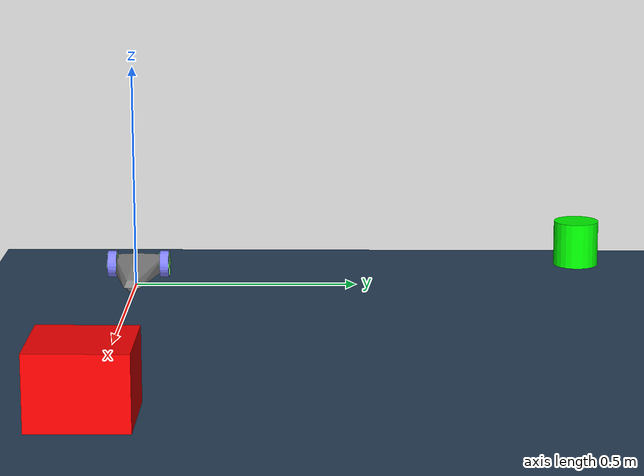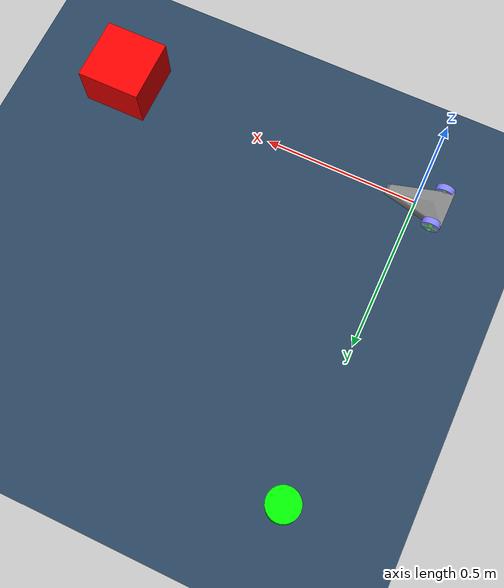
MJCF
<mujoco>
    <compiler autolimits="true" />

    <worldbody>
        <geom type="plane" size="3 3 .01" material="grid" />

        <body name="car" pos="0 0 .03">
            <freejoint />
            <light name="top light" pos="0 0 2" mode="trackcom" diffuse=".4 .4 .4" />
            <geom name="chasis" type="mesh" mesh="chasis" />
            <geom name="front wheel" pos=".08 0 -.015" type="sphere" size=".015" condim="1" priority="1" />
            <light name="front light" pos=".1 0 .02" dir="2 0 -1" diffuse="1 1 1" />

            <body name="left wheel" pos="-.07 .06 0" zaxis="0 1 0">
                <joint name="left" damping="0.1" armature="0.01" />
                <geom class="wheel" />
                <site class="decor" size=".006 .025 .012" />
                <site class="decor" size=".025 .006 .012" />
            </body>

            <body name="right wheel" pos="-.07 -.06 0" zaxis="0 1 0">
                <joint name="right" damping="0.1" armature="0.01" />
                <geom class="wheel" />
                <site class="decor" size=".006 .025 .012" />
                <site class="decor" size=".025 .006 .012" />
            </body>
        </body>

        <body name="box_0" pos="1 0 0.05">
            <geom type="box" size="0.1 0.1 0.1" rgba="1 0 0 1" />
        </body>

        <body name="cylinder_1" pos="0 1 0.1">
            <geom type="cylinder" size="0.05 0.05" rgba="0 1 0 1" />
        </body>
    </worldbody>
    <asset>
        <texture name="grid" type="2d" builtin="checker" width="512" height="512" rgb1=".1 .2 .3" rgb2=".2 .3 .4" />
        <material name="grid" texture="grid" texrepeat="1 1" texuniform="true" reflectance=".2" />
        <mesh name="chasis" scale=".01 .006 .0015"
            vertex=" 9   2   0                 -10  10  10                 9  -2   0                 10  3  -10                 10 -3  -10                 -8   10 -10                 -10 -10  10                 -8  -10 -10                 -5   0   20" />
    </asset>
    <default>
        <default class="wheel">
            <geom type="cylinder" size=".03 .01" rgba=".5 .5 1 1" friction="2.0 0.5 0.01" />
        </default>
        <default class="decor">
            <site type="box" rgba=".5 1 .5 1" />
        </default>
    </default>
</mujoco>
